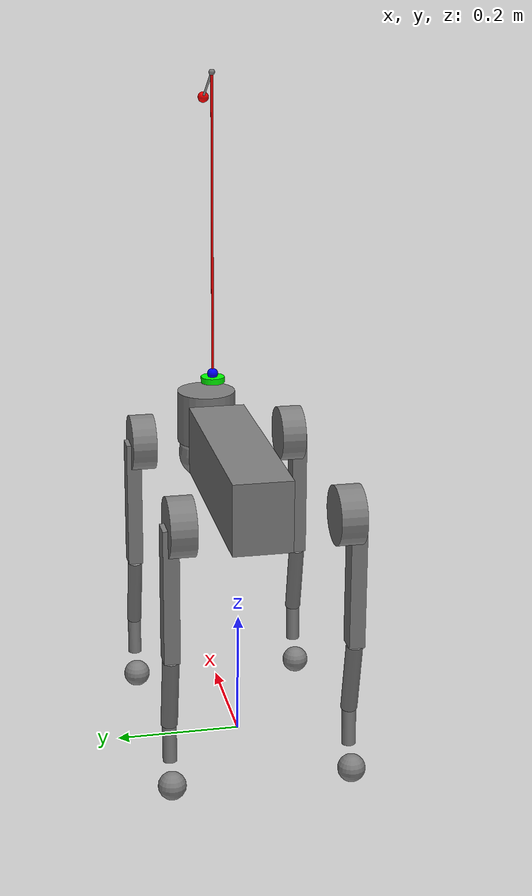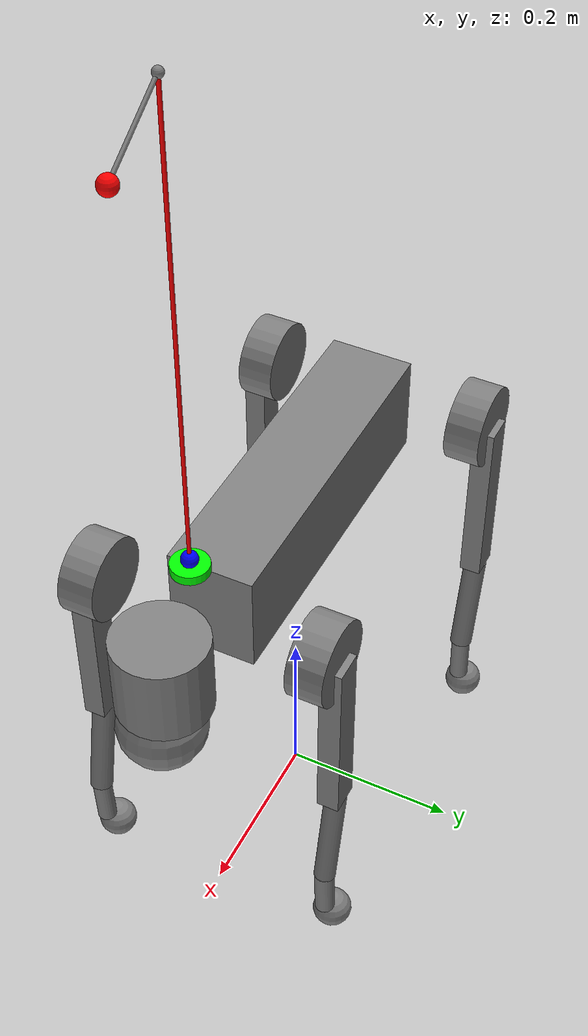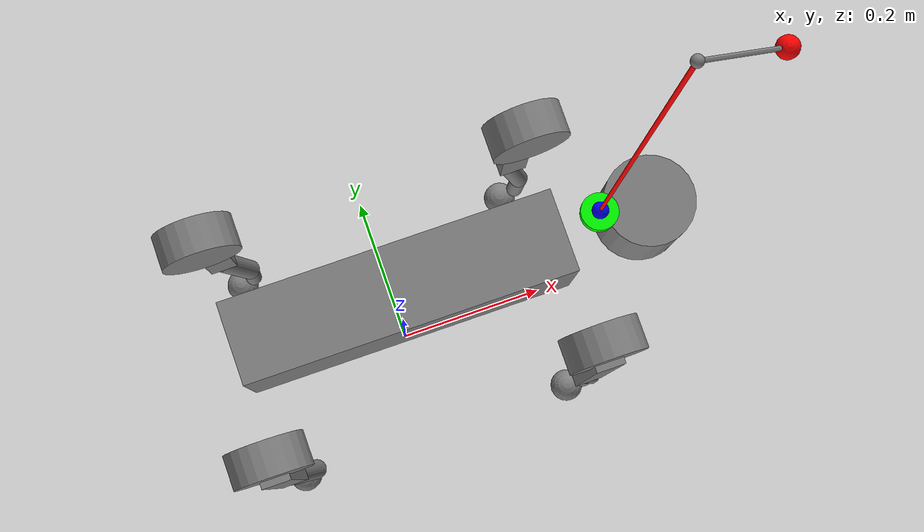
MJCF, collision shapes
<mujoco model="go2">
  <compiler angle="radian" meshdir="assets" autolimits="true" />

  <option cone="elliptic" impratio="100" />

  <default>
    <default class="go2">
      <geom friction="0.6" margin="0.001" condim="1" />
      <joint axis="0 1 0" damping="2" armature="0.01" frictionloss="0.2" />
      <motor ctrlrange="-23.7 23.7" />
      <default class="abduction">
        <joint axis="1 0 0" range="-1.0472 1.0472" />
      </default>
      <default class="hip">
        <default class="front_hip">
          <joint range="-1.5708 3.4907" />
        </default>
        <default class="back_hip">
          <joint range="-0.5236 4.5379" />
        </default>
      </default>
      <default class="knee">
        <joint range="-2.7227 -0.83776" />
        <motor ctrlrange="-45.43 45.43" />
      </default>
      <default class="visual">
        <geom type="mesh" contype="0" conaffinity="0" group="2" />
      </default>
      <default class="collision">
        <geom group="3" />
        <default class="foot">
          <geom size="0.022" pos="-0.002 0 -0.213" priority="1" solimp="0.015 1 0.022" condim="6"
            friction="0.8 0.02 0.01" />
        </default>
      </default>
    </default>
  </default>

  <asset>
    <material name="metal" rgba=".9 .95 .95 1" />
    <material name="black" rgba="0 0 0 1" />
    <material name="white" rgba="1 1 1 1" />
    <material name="gray" rgba="0.671705 0.692426 0.774270 1" />
    <material name="red_material" rgba="1 0 0 1" />

    <mesh file="base_0.obj" />
    <mesh file="base_1.obj" />
    <mesh file="base_2.obj" />
    <mesh file="base_3.obj" />
    <mesh file="base_4.obj" />
    <mesh file="hip_0.obj" />
    <mesh file="hip_1.obj" />
    <mesh file="thigh_0.obj" />
    <mesh file="thigh_1.obj" />
    <mesh file="thigh_mirror_0.obj" />
    <mesh file="thigh_mirror_1.obj" />
    <mesh file="calf_0.obj" />
    <mesh file="calf_1.obj" />
    <mesh file="calf_mirror_0.obj" />
    <mesh file="calf_mirror_1.obj" />
    <mesh file="foot.obj" />
  </asset>

  <worldbody>
    <body name="base" pos="0 0 0.445" childclass="go2">
      <inertial pos="0.021112 0 -0.005366" quat="-0.000543471 0.713435 -0.00173769 0.700719"
        mass="6.921"
        diaginertia="0.107027 0.0980771 0.0244531" />
      <freejoint />
      <geom mesh="base_0" material="black" class="visual" />
      <geom mesh="base_1" material="black" class="visual" />
      <geom mesh="base_2" material="black" class="visual" />
      <geom mesh="base_3" material="white" class="visual" />
      <geom mesh="base_4" material="gray" class="visual" />
      <geom size="0.1881 0.04675 0.057" type="box" class="collision" />
      <geom size="0.05 0.045" pos="0.285 0 0.01" type="cylinder" class="collision" />
      <geom size="0.047" pos="0.293 0 -0.06" class="collision" />
      <site name="imu" pos="-0.02557 0 0.04232" />
      <body name="FL_hip" pos="0.1934 0.0465 0">
        <inertial pos="-0.0054 0.00194 -0.000105" quat="0.497014 0.499245 0.505462 0.498237"
          mass="0.678"
          diaginertia="0.00088403 0.000596003 0.000479967" />
        <joint name="FL_hip_joint" class="abduction" />
        <geom mesh="hip_0" material="metal" class="visual" />
        <geom mesh="hip_1" material="gray" class="visual" />
        <geom size="0.046 0.02" pos="0 0.08 0" quat="1 1 0 0" type="cylinder" class="collision" />
        <body name="FL_thigh" pos="0 0.0955 0">
          <inertial pos="-0.00374 -0.0223 -0.0327" quat="0.829533 0.0847635 -0.0200632 0.551623"
            mass="1.152"
            diaginertia="0.00594973 0.00584149 0.000878787" />
          <joint name="FL_thigh_joint" class="front_hip" />
          <geom mesh="thigh_0" material="metal" class="visual" />
          <geom mesh="thigh_1" material="gray" class="visual" />
          <geom size="0.1065 0.01225 0.017" pos="0 0 -0.1065" quat="0.707107 0 0.707107 0"
            type="box" class="collision" />
          <body name="FL_calf" pos="0 0 -0.213">
            <inertial pos="0.00629595 -0.000622121 -0.141417"
              quat="0.710672 0.00154099 -0.00450087 0.703508"
              mass="0.241352" diaginertia="0.0014901 0.00146356 5.31397e-05" />
            <joint name="FL_calf_joint" class="knee" />
            <geom mesh="calf_0" material="gray" class="visual" />
            <geom mesh="calf_1" material="black" class="visual" />
            <geom size="0.012 0.06" pos="0.008 0 -0.06" quat="0.994493 0 -0.104807 0"
              type="cylinder" class="collision" />
            <geom size="0.011 0.0325" pos="0.02 0 -0.148" quat="0.999688 0 0.0249974 0"
              type="cylinder" class="collision" />
            <geom pos="0 0 -0.213" mesh="foot" class="visual" material="black" />
            <geom name="FL" class="foot" />
          </body>
        </body>
      </body>
      <body name="FR_hip" pos="0.1934 -0.0465 0">
        <inertial pos="-0.0054 -0.00194 -0.000105" quat="0.498237 0.505462 0.499245 0.497014"
          mass="0.678"
          diaginertia="0.00088403 0.000596003 0.000479967" />
        <joint name="FR_hip_joint" class="abduction" />
        <geom mesh="hip_0" material="metal" class="visual" quat="4.63268e-05 1 0 0" />
        <geom mesh="hip_1" material="gray" class="visual" quat="4.63268e-05 1 0 0" />
        <geom size="0.046 0.02" pos="0 -0.08 0" quat="0.707107 0.707107 0 0" type="cylinder"
          class="collision" />
        <body name="FR_thigh" pos="0 -0.0955 0">
          <inertial pos="-0.00374 0.0223 -0.0327" quat="0.551623 -0.0200632 0.0847635 0.829533"
            mass="1.152"
            diaginertia="0.00594973 0.00584149 0.000878787" />
          <joint name="FR_thigh_joint" class="front_hip" />
          <geom mesh="thigh_mirror_0" material="metal" class="visual" />
          <geom mesh="thigh_mirror_1" material="gray" class="visual" />
          <geom size="0.1065 0.01225 0.017" pos="0 0 -0.1065" quat="0.707107 0 0.707107 0"
            type="box" class="collision" />
          <body name="FR_calf" pos="0 0 -0.213">
            <inertial pos="0.00629595 0.000622121 -0.141417"
              quat="0.703508 -0.00450087 0.00154099 0.710672"
              mass="0.241352" diaginertia="0.0014901 0.00146356 5.31397e-05" />
            <joint name="FR_calf_joint" class="knee" />
            <geom mesh="calf_mirror_0" material="gray" class="visual" />
            <geom mesh="calf_mirror_1" material="black" class="visual" />
            <geom size="0.013 0.06" pos="0.01 0 -0.06" quat="0.995004 0 -0.0998334 0"
              type="cylinder" class="collision" />
            <geom size="0.011 0.0325" pos="0.02 0 -0.148" quat="0.999688 0 0.0249974 0"
              type="cylinder" class="collision" />
            <geom pos="0 0 -0.213" mesh="foot" class="visual" material="black" />
            <geom name="FR" class="foot" />
          </body>
        </body>
      </body>
      <body name="RL_hip" pos="-0.1934 0.0465 0">
        <inertial pos="0.0054 0.00194 -0.000105" quat="0.505462 0.498237 0.497014 0.499245"
          mass="0.678"
          diaginertia="0.00088403 0.000596003 0.000479967" />
        <joint name="RL_hip_joint" class="abduction" />
        <geom mesh="hip_0" material="metal" class="visual" quat="4.63268e-05 0 1 0" />
        <geom mesh="hip_1" material="gray" class="visual" quat="4.63268e-05 0 1 0" />
        <geom size="0.046 0.02" pos="0 0.08 0" quat="0.707107 0.707107 0 0" type="cylinder"
          class="collision" />
        <body name="RL_thigh" pos="0 0.0955 0">
          <inertial pos="-0.00374 -0.0223 -0.0327" quat="0.829533 0.0847635 -0.0200632 0.551623"
            mass="1.152"
            diaginertia="0.00594973 0.00584149 0.000878787" />
          <joint name="RL_thigh_joint" class="back_hip" />
          <geom mesh="thigh_0" material="metal" class="visual" />
          <geom mesh="thigh_1" material="gray" class="visual" />
          <geom size="0.1065 0.01225 0.017" pos="0 0 -0.1065" quat="0.707107 0 0.707107 0"
            type="box" class="collision" />
          <body name="RL_calf" pos="0 0 -0.213">
            <inertial pos="0.00629595 -0.000622121 -0.141417"
              quat="0.710672 0.00154099 -0.00450087 0.703508"
              mass="0.241352" diaginertia="0.0014901 0.00146356 5.31397e-05" />
            <joint name="RL_calf_joint" class="knee" />
            <geom mesh="calf_0" material="gray" class="visual" />
            <geom mesh="calf_1" material="black" class="visual" />
            <geom size="0.013 0.06" pos="0.01 0 -0.06" quat="0.995004 0 -0.0998334 0"
              type="cylinder" class="collision" />
            <geom size="0.011 0.0325" pos="0.02 0 -0.148" quat="0.999688 0 0.0249974 0"
              type="cylinder" class="collision" />
            <geom pos="0 0 -0.213" mesh="foot" class="visual" material="black" />
            <geom name="RL" class="foot" />
          </body>
        </body>
      </body>
      <body name="RR_hip" pos="-0.1934 -0.0465 0">
        <inertial pos="0.0054 -0.00194 -0.000105" quat="0.499245 0.497014 0.498237 0.505462"
          mass="0.678"
          diaginertia="0.00088403 0.000596003 0.000479967" />
        <joint name="RR_hip_joint" class="abduction" />
        <geom mesh="hip_0" material="metal" class="visual"
          quat="2.14617e-09 4.63268e-05 4.63268e-05 -1" />
        <geom mesh="hip_1" material="gray" class="visual"
          quat="2.14617e-09 4.63268e-05 4.63268e-05 -1" />
        <geom size="0.046 0.02" pos="0 -0.08 0" quat="0.707107 0.707107 0 0" type="cylinder"
          class="collision" />
        <body name="RR_thigh" pos="0 -0.0955 0">
          <inertial pos="-0.00374 0.0223 -0.0327" quat="0.551623 -0.0200632 0.0847635 0.829533"
            mass="1.152"
            diaginertia="0.00594973 0.00584149 0.000878787" />
          <joint name="RR_thigh_joint" class="back_hip" />
          <geom mesh="thigh_mirror_0" material="metal" class="visual" />
          <geom mesh="thigh_mirror_1" material="gray" class="visual" />
          <geom size="0.1065 0.01225 0.017" pos="0 0 -0.1065" quat="0.707107 0 0.707107 0"
            type="box" class="collision" />
          <body name="RR_calf" pos="0 0 -0.213">
            <inertial pos="0.00629595 0.000622121 -0.141417"
              quat="0.703508 -0.00450087 0.00154099 0.710672"
              mass="0.241352" diaginertia="0.0014901 0.00146356 5.31397e-05" />
            <joint name="RR_calf_joint" class="knee" />
            <geom mesh="calf_mirror_0" material="gray" class="visual" />
            <geom mesh="calf_mirror_1" material="black" class="visual" />
            <geom size="0.013 0.06" pos="0.01 0 -0.06" quat="0.995004 0 -0.0998334 0"
              type="cylinder" class="collision" />
            <geom size="0.011 0.0325" pos="0.02 0 -0.148" quat="0.999688 0 0.0249974 0"
              type="cylinder" class="collision" />
            <geom pos="0 0 -0.213" mesh="foot" class="visual" material="black" />
            <geom name="RR" class="foot" />
          </body>
        </body>
      </body>

      <body name="motor_base" pos="0.222 0 0.094">
        <joint name="motor_rotation" type="hinge" axis="0 0 1" pos="0 0 0" range="-360 360" />
        <geom type="cylinder" size="0.02 0.005" rgba="0 1 0 1" />

        <body name="rod" pos="0 0 0.01">
          <joint name="rod_joint" type="hinge" axis="0 1 0" pos="0 0 0" range="-0.7 0.7"
            damping="1000" />
          <geom type="cylinder" size="0.002 0.25" pos="0 0 0.25" rgba="1 0 0 1" contype="1"
            conaffinity="1" group="0" />
          <inertial mass="0.5" pos="0 0 0.25" diaginertia="0.1 0.1 0.02" />
          <body pos="0 0 0.5">
            <site name="rope_start" pos="0 0 0" />
            <body pos="0 0 -0.5">
              <geom type="sphere" size="0.009" rgba="0 0 1 1" />
            </body>
          </body>
        </body>
      </body>
    </body>

    <body pos="0.3 0 1">
      <joint type="free" damping="1" frictionloss="0.05" range="-0.9 0.9" />
      <geom size="0.009 0.0085" type="sphere" material="red_material" />
      <inertial pos="0 0 0" mass="0.5" diaginertia="0.001 0.001 0.001" />
      <site name="rope_end" pos="0 0 0.00001" size="0.0005" />
    </body>

  </worldbody>

  <tendon>
    <spatial limited="true" range="0 0.4" width="0.002">
      <site site="rope_start" />
      <site site="rope_end" />
    </spatial>
  </tendon>

  <actuator>
    <motor class="abduction" name="FR_hip" joint="FR_hip_joint" />
    <motor class="hip" name="FR_thigh" joint="FR_thigh_joint" />
    <motor class="knee" name="FR_calf" joint="FR_calf_joint" />
    <motor class="abduction" name="FL_hip" joint="FL_hip_joint" />
    <motor class="hip" name="FL_thigh" joint="FL_thigh_joint" />
    <motor class="knee" name="FL_calf" joint="FL_calf_joint" />
    <motor class="abduction" name="RR_hip" joint="RR_hip_joint" />
    <motor class="hip" name="RR_thigh" joint="RR_thigh_joint" />
    <motor class="knee" name="RR_calf" joint="RR_calf_joint" />
    <motor class="abduction" name="RL_hip" joint="RL_hip_joint" />
    <motor class="hip" name="RL_thigh" joint="RL_thigh_joint" />
    <motor class="knee" name="RL_calf" joint="RL_calf_joint" />
    <motor name="motor_base_motor" joint="motor_rotation" gear="20" ctrlrange="-1 1" />
    <motor name="rod_motor" joint="rod_joint" gear="20" ctrlrange="-1 1" />
  </actuator>

  <keyframe>
    <key name="home"
      qpos="0 0 0.27 1 0 0 0 0 0.9 -1.8 0 0.9 -1.8 0 0.9 -1.8 0 0.9 -1.8 0 0.4 0.35 0 0.45 0 0 0 0"
      ctrl="0 0.9 -1.8 0 0.9 -1.8 0 0.9 -1.8 0 0.9 -1.8 0 0" />
  </keyframe>
</mujoco>
